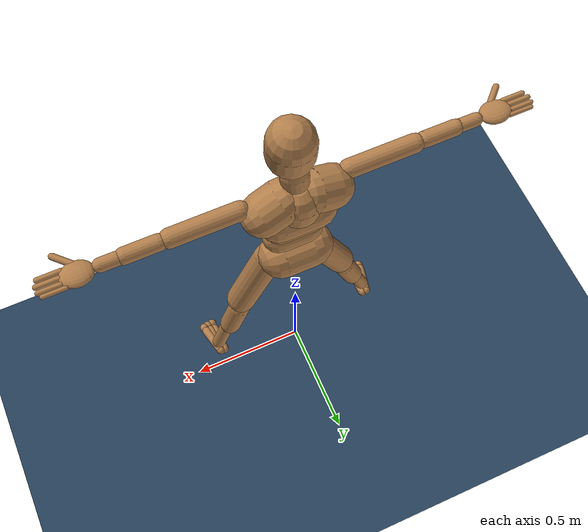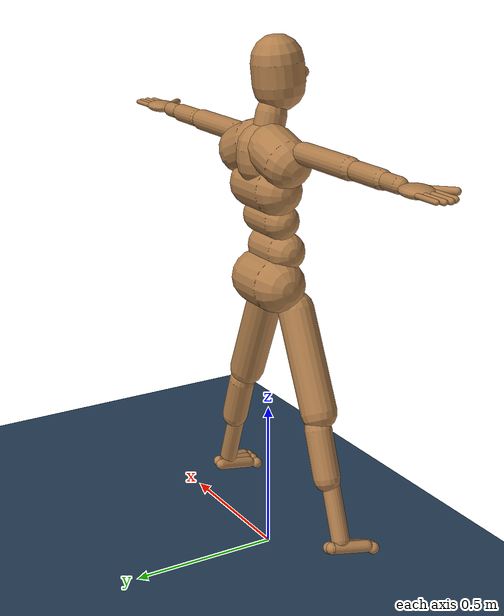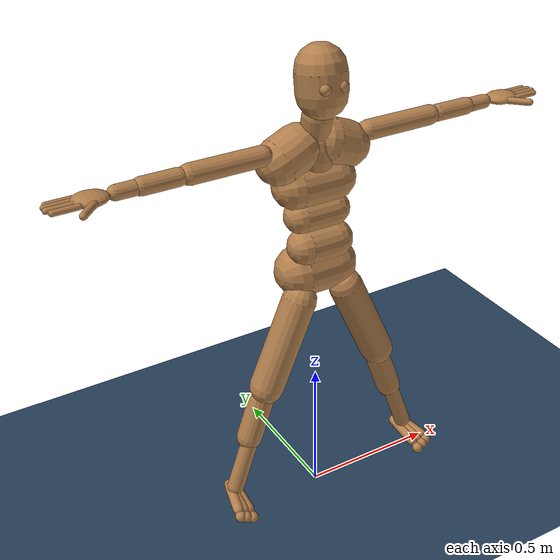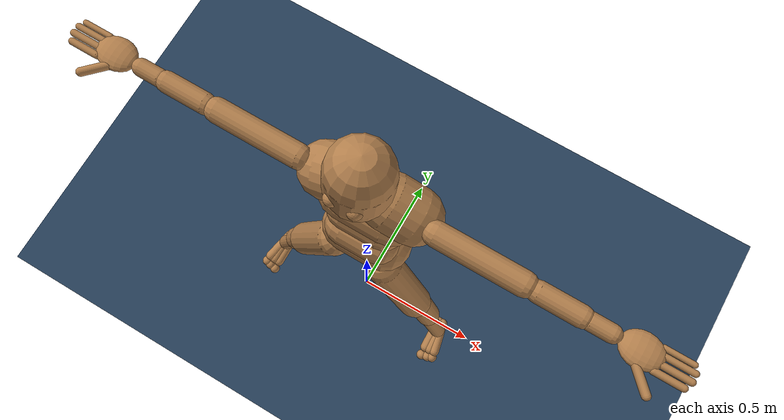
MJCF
<mujoco model="humanoid_CMU">

  <include file="./common/skybox.xml"/>
  <include file="./common/visual.xml"/>
  <include file="./common/materials.xml"/>

  <statistic extent="2" center="0 0 1"/>

  <default class="main">
    <joint limited="true" solimplimit="0 0.99 0.01" stiffness="0.1" armature=".01" damping="1"/>
    <geom friction="0.7" solref="0.015 1" solimp="0.95 0.99 0.003"/>
    <motor ctrllimited="true" ctrlrange="-1 1"/>
    <default class="humanoid">
      <geom type="capsule" material="self"/>
      <default class="stiff_low">
        <joint stiffness=".5" damping="4"/>
      </default>
      <default class="stiff_medium">
        <joint stiffness="10" damping="5"/>
      </default>
      <default class="stiff_high">
        <joint stiffness="30" damping="10"/>
      </default>
      <default class="touch">
        <site group="3" rgba="0 0 1 .5"/>
      </default>
    </default>
  </default>

  <worldbody>
    <geom name="floor" type="plane" conaffinity="1" size="100 100 .2" material="grid"/>
    <light name="tracking_light" pos="0 0 7" dir="0 0 -1" mode="trackcom"/>
    <camera name="back" pos="0 3 2.4" xyaxes="-1 0 0 0 -1 2" mode="trackcom"/>
    <camera name="side" pos="-3 0 2.4" xyaxes="0 -1 0 1 0 2" mode="trackcom"/>
    <body name="root" childclass="humanoid" pos="0 0 1" euler="90 0 0">
      <site name="root" size=".01" rgba="0.5 0.5 0.5 0"/>
      <freejoint name="root"/>
      <geom name="root_geom" size="0.09 0.06" pos="0 -0.05 0" quat="1 0 -1 0"/>
      <body name="lhipjoint">
        <geom name="lhipjoint" size="0.008 0.022" pos="0.051 -0.046 0.025" quat="0.5708 -0.566602 -0.594264 0"/>
        <body name="lfemur" pos="0.102 -0.092 0.05" quat="1 0 0 0.17365">
          <joint name="lfemurrz" axis="0 0 1" range="-60 70" class="stiff_medium"/>
          <joint name="lfemurry" axis="0 1 0" range="-70 70" class="stiff_medium"/>
          <joint name="lfemurrx" axis="1 0 0" range="-160 20" class="stiff_medium"/>
          <geom name="lfemur" size="0.06 0.17" pos="-.01 -0.202473 0" quat="0.7 -0.7 -0.1228 -0.07"/>
          <body name="ltibia" pos="0 -0.404945 0">
            <joint name="ltibiarx" axis="1 0 0" range="1   170" class="stiff_low"/>
            <geom name="ltibia" size="0.03 0.1825614" pos="0 -0.202846 0" quat="0.7 -0.7 -0.1228 -0.1228"/>
            <geom name="lcalf" size="0.045 0.08" pos="0 -0.1 -.01" quat="0.7 -0.7 -0.1228 -0.1228"/>
            <body name="lfoot" pos="0 -0.405693 0" quat="0.707107 -0.707107 0 0">
              <site name="lfoot_touch" type="box" pos="-.005 -.02 -0.025" size=".04 .08 .02" euler="10 0 0" class="touch"/>
              <joint name="lfootrz" axis="0 0 1" range="-70 20" class="stiff_medium"/>
              <joint name="lfootrx" axis="1 0 0" range="-45    90" class="stiff_medium"/>
              <geom name="lfoot0" size="0.02 0.06" pos="-0.02 -0.023 -0.01" euler="100 -2 0"/>
              <geom name="lfoot1" size="0.02 0.06" pos="0 -0.023 -0.01" euler="100 0 0"/>
              <geom name="lfoot2" size="0.02 0.06" pos=".01 -0.023 -0.01" euler="100 10 0"/>
              <body name="ltoes" pos="0 -0.106372 -0.0227756">
                <joint name="ltoesrx" axis="1 0 0" range="-90 20"/>
                <geom name="ltoes0" type="sphere" size="0.02" pos="-.025 -0.01 -.01"/>
                <geom name="ltoes1" type="sphere" size="0.02" pos="0 -0.005 -.01"/>
                <geom name="ltoes2" type="sphere" size="0.02" pos=".02 .001 -.01"/>
                <site name="ltoes_touch" type="capsule" pos="-.005 -.005 -.01" size="0.025 0.02" zaxis="1 .2 0" class="touch"/>
              </body>
            </body>
          </body>
        </body>
      </body>
      <body name="rhipjoint">
        <geom name="rhipjoint" size="0.008 0.022" pos="-0.051 -0.046 0.025" quat="0.574856 -0.547594 0.608014 0"/>
        <body name="rfemur" pos="-0.102 -0.092 0.05" quat="1 0 0 -0.17365">
          <joint name="rfemurrz" axis="0 0 1" range="-70 60" class="stiff_medium"/>
          <joint name="rfemurry" axis="0 1 0" range="-70 70" class="stiff_medium"/>
          <joint name="rfemurrx" axis="1 0 0" range="-160 20" class="stiff_medium"/>
          <geom name="rfemur" size="0.06 0.17" pos=".01 -0.202473 0" quat="0.7 -0.7 0.1228 0.07"/>
          <body name="rtibia" pos="0 -0.404945 0">
            <joint name="rtibiarx" axis="1 0 0" range="1   170" class="stiff_low"/>
            <geom name="rtibia" size="0.03 0.1825614" pos="0 -0.202846 0" quat="0.7 -0.7 0.1228 0.1228"/>
            <geom name="rcalf" size="0.045 0.08" pos="0 -0.1 -.01" quat="0.7 -0.7 -0.1228 -0.1228"/>
            <body name="rfoot" pos="0 -0.405693 0" quat="0.707107 -0.707107 0 0">
              <site name="rfoot_touch" type="box" pos=".005 -.02 -0.025" size=".04 .08 .02" euler="10 0 0" class="touch"/>
              <joint name="rfootrz" axis="0 0 1" range="-20 70" class="stiff_medium"/>
              <joint name="rfootrx" axis="1 0 0" range="-45    90" class="stiff_medium"/>
              <geom name="rfoot0" size="0.02 0.06" pos="0.02 -0.023 -0.01" euler="100 2 0"/>
              <geom name="rfoot1" size="0.02 0.06" pos="0 -0.023 -0.01" euler="100 0 0"/>
              <geom name="rfoot2" size="0.02 0.06" pos="-.01 -0.023 -0.01" euler="100 -10 0"/>
              <body name="rtoes" pos="0 -0.106372 -0.0227756">
                <joint name="rtoesrx" axis="1 0 0" range="-90 20"/>
                <geom name="rtoes0" type="sphere" size="0.02" pos=".025 -0.01 -.01"/>
                <geom name="rtoes1" type="sphere" size="0.02" pos="0 -0.005 -.01"/>
                <geom name="rtoes2" type="sphere" size="0.02" pos="-.02 .001 -.01"/>
                <site name="rtoes_touch" type="capsule" pos=".005 -.005 -.01" size="0.025 0.02" zaxis="1 -.2 0" class="touch"/>
              </body>
            </body>
          </body>
        </body>
      </body>
      <body name="lowerback">
        <joint name="lowerbackrz" axis="0 0 1" range="-30 30" class="stiff_high"/>
        <joint name="lowerbackry" axis="0 1 0" range="-30 30" class="stiff_high"/>
        <joint name="lowerbackrx" axis="1 0 0" range="-20 45" class="stiff_high"/>
        <geom name="lowerback" size="0.065 0.055" pos="0 0.056 .03" quat="1 0 1 0"/>
        <body name="upperback" pos="0 0.1 -0.01">
          <joint name="upperbackrz" axis="0 0 1" range="-30 30" class="stiff_high"/>
          <joint name="upperbackry" axis="0 1 0" range="-30 30" class="stiff_high"/>
          <joint name="upperbackrx" axis="1 0 0" range="-20 45" class="stiff_high"/>
          <geom name="upperback" size="0.06 0.06" pos="0 0.06 0.02" quat="1 0 1 0"/>
          <body name="thorax" pos="0.000512528 0.11356 0.000936821">
            <joint name="thoraxrz" axis="0 0 1" range="-30 30" class="stiff_high"/>
            <joint name="thoraxry" axis="0 1 0" range="-30 30" class="stiff_high"/>
            <joint name="thoraxrx" axis="1 0 0" range="-20 45" class="stiff_high"/>
            <geom name="thorax" size="0.08 0.07" pos="0 0.05 0" quat="1 0 1 0"/>
            <body name="lowerneck" pos="0 0.113945 0.00468037">
              <joint name="lowerneckrz" axis="0 0 1" range="-30 30" class="stiff_medium"/>
              <joint name="lowerneckry" axis="0 1 0" range="-30 30" class="stiff_medium"/>
              <joint name="lowerneckrx" axis="1 0 0" range="-20 45" class="stiff_medium"/>
              <geom name="lowerneck" size="0.08 0.02" pos="0 0.04 -.02" quat="1 1 0 0"/>
              <body name="upperneck" pos="0 0.09 0.01">
                <joint name="upperneckrz" axis="0 0 1" range="-30 30" class="stiff_medium"/>
                <joint name="upperneckry" axis="0 1 0" range="-30 30" class="stiff_medium"/>
                <joint name="upperneckrx" axis="1 0 0" range="-20 45" class="stiff_medium"/>
                <geom name="upperneck" size="0.05 0.03" pos="0 0.05 0" quat=".8 1 0 0"/>
                <body name="head" pos="0 0.09 0">
                  <joint name="headrz" axis="0 0 1" range="-30 30" class="stiff_medium"/>
                  <joint name="headry" axis="0 1 0" range="-30 30" class="stiff_medium"/>
                  <joint name="headrx" axis="1 0 0" range="-20 45" class="stiff_medium"/>
                  <geom name="head" size="0.085 0.035" pos="0 0.11 0.03" quat="1 .9 0 0"/>
                  <geom name="leye" type="sphere" size="0.02" pos=" .03 0.11 0.1"/>
                  <geom name="reye" type="sphere" size="0.02" pos="-.03 0.11 0.1"/>
                </body>
              </body>
            </body>
            <body name="lclavicle" pos="0 0.113945 0.00468037">
              <joint name="lclaviclerz" axis="0 0 1" range="0 20" class="stiff_high"/>
              <joint name="lclaviclery" axis="0 1 0" range="-20 10" class="stiff_high"/>
              <geom name="lclavicle" size="0.08 0.04" pos="0.09 0.05 -.01" quat="1 0 -1 -.4"/>
              <body name="lhumerus" pos="0.183 0.076 0.01" quat="0.18 0.68 -0.68 0.18">
                <joint name="lhumerusrz" axis="0 0 1" range="-90 90" class="stiff_low"/>
                <joint name="lhumerusry" axis="0 1 0" range="-90 90" class="stiff_low"/>
                <joint name="lhumerusrx" axis="1 0 0" range="-60 90" class="stiff_low"/>
                <geom name="lhumerus" size="0.035 0.124" pos="0 -0.138 0" quat="0.612 -0.612 0.35 0.35"/>
                <body name="lradius" pos="0 -0.277 0">
                  <joint name="lradiusrx" axis="1 0 0" range="-10 170" class="stiff_low"/>
                  <geom name="lradius" size="0.03 0.06" pos="0 -0.08 0" quat="0.612 -0.612 0.35 0.35"/>
                  <body name="lwrist" pos="0 -0.17 0" quat="-0.5 0 0.866 0">
                    <joint name="lwristry" axis="0 1 0" range="-180 0"/>
                    <geom name="lwrist" size="0.025 0.03" pos="0 -0.02 0" quat="0 0 -1 -1"/>
                    <body name="lhand" pos="0 -0.08 0">
                      <joint name="lhandrz" axis="0 0 1" range="-45 45"/>
                      <joint name="lhandrx" axis="1 0 0" range="-90 90"/>
                      <geom name="lhand" type="ellipsoid" size=".048 0.02 0.06" pos="0 -0.047 0" quat="0 0 -1 -1"/>
                      <body name="lfingers" pos="0 -0.08 0">
                        <joint name="lfingersrx" axis="1 0 0" range="0 90"/>
                        <geom name="lfinger0" size="0.01 0.04" pos="-.03 -0.05 0" quat="1 -1 0 0" />
                        <geom name="lfinger1" size="0.01 0.04" pos="-.008 -0.06 0" quat="1 -1 0 0" />
                        <geom name="lfinger2" size="0.009 0.04" pos=".014 -0.06 0" quat="1 -1 0 0" />
                        <geom name="lfinger3" size="0.008 0.04" pos=".032 -0.05 0" quat="1 -1 0 0" />
                      </body>
                      <body name="lthumb" pos="-.02 -.03 0" quat="0.92388 0 0 -0.382683">
                        <joint name="lthumbrz" axis="0 0 1" range="-45 45"/>
                        <joint name="lthumbrx" axis="1 0 0" range="0 90"/>
                        <geom name="lthumb" size="0.012 0.04" pos="0 -0.06 0" quat="0 0 -1 -1"/>
                      </body>
                    </body>
                  </body>
                </body>
              </body>
            </body>
            <body name="rclavicle" pos="0 0.113945 0.00468037">
              <joint name="rclaviclerz" axis="0 0 1" range="-20 0" class="stiff_high"/>
              <joint name="rclaviclery" axis="0 1 0" range="-10 20" class="stiff_high"/>
              <geom name="rclavicle" size="0.08 0.04" pos="-.09 0.05 -.01" quat="1 0 -1 .4"/>
              <body name="rhumerus" pos="-0.183 0.076 0.01" quat="0.18 0.68 0.68 -0.18">
                <joint name="rhumerusrz" axis="0 0 1" range="-90 90" class="stiff_low"/>
                <joint name="rhumerusry" axis="0 1 0" range="-90 90" class="stiff_low"/>
                <joint name="rhumerusrx" axis="1 0 0" range="-90 60" class="stiff_low"/>
                <geom name="rhumerus" size="0.035 0.124" pos="0 -0.138 0" quat="0.61 -0.61 -0.35 -0.35"/>
                <body name="rradius" pos="0 -0.277 0">
                  <joint name="rradiusrx" axis="1 0 0" range="-10 170" class="stiff_low"/>
                  <geom name="rradius" size="0.03 0.06" pos="0 -0.08 0" quat="0.612 -0.612 -0.35 -0.35"/>
                  <body name="rwrist" pos="0 -0.17 0" quat="-0.5 0 -0.866 0">
                    <joint name="rwristry" axis="0 1 0" range="-180 0"/>
                    <geom name="rwrist" size="0.025 0.03" pos="0 -0.02 0" quat="0 0 1 1"/>
                    <body name="rhand" pos="0 -0.08 0">
                      <joint name="rhandrz" axis="0 0 1" range="-45 45"/>
                      <joint name="rhandrx" axis="1 0 0" range="-90 90"/>
                      <geom name="rhand" type="ellipsoid" size=".048 0.02 .06" pos="0 -0.047 0" quat="0 0 1 1"/>
                      <body name="rfingers" pos="0 -0.08 0">
                        <joint name="rfingersrx" axis="1 0 0" range="0 90"/>
                        <geom name="rfinger0" size="0.01 0.04" pos=".03 -0.05 0" quat="1 -1  0 0" />
                        <geom name="rfinger1" size="0.01 0.04" pos=".008 -0.06 0" quat="1 -1  0 0" />
                        <geom name="rfinger2" size="0.009 0.04" pos="-.014 -0.06 0" quat="1 -1  0 0" />
                        <geom name="rfinger3" size="0.008 0.04" pos="-.032 -0.05 0" quat="1 -1  0 0" />
                      </body>
                      <body name="rthumb" pos=".02 -.03 0" quat="0.92388 0 0 0.382683">
                        <joint name="rthumbrz" axis="0 0 1" range="-45    45"/>
                        <joint name="rthumbrx" axis="1 0 0" range="0 90"/>
                        <geom name="rthumb" size="0.012 0.04" pos="0 -0.06 0" quat="0 0 1 1"/>
                      </body>
                    </body>
                  </body>
                </body>
              </body>
            </body>
          </body>
        </body>
      </body>
    </body>
  </worldbody>

  <contact>
    <exclude body1="lclavicle" body2="rclavicle"/>
    <exclude body1="lowerneck" body2="lclavicle"/>
    <exclude body1="lowerneck" body2="rclavicle"/>
    <exclude body1="upperneck" body2="lclavicle"/>
    <exclude body1="upperneck" body2="rclavicle"/>
  </contact>

  <actuator>
    <motor name="headrx" joint="headrx" gear="20"/>
    <motor name="headry" joint="headry" gear="20"/>
    <motor name="headrz" joint="headrz" gear="20"/>
    <motor name="lclaviclery" joint="lclaviclery" gear="20"/>
    <motor name="lclaviclerz" joint="lclaviclerz" gear="20"/>
    <motor name="lfemurrx" joint="lfemurrx" gear="120"/>
    <motor name="lfemurry" joint="lfemurry" gear="40"/>
    <motor name="lfemurrz" joint="lfemurrz" gear="40"/>
    <motor name="lfingersrx" joint="lfingersrx" gear="20"/>
    <motor name="lfootrx" joint="lfootrx" gear="20"/>
    <motor name="lfootrz" joint="lfootrz" gear="20"/>
    <motor name="lhandrx" joint="lhandrx" gear="20"/>
    <motor name="lhandrz" joint="lhandrz" gear="20"/>
    <motor name="lhumerusrx" joint="lhumerusrx" gear="40"/>
    <motor name="lhumerusry" joint="lhumerusry" gear="40"/>
    <motor name="lhumerusrz" joint="lhumerusrz" gear="40"/>
    <motor name="lowerbackrx" joint="lowerbackrx" gear="40"/>
    <motor name="lowerbackry" joint="lowerbackry" gear="40"/>
    <motor name="lowerbackrz" joint="lowerbackrz" gear="40"/>
    <motor name="lowerneckrx" joint="lowerneckrx" gear="20"/>
    <motor name="lowerneckry" joint="lowerneckry" gear="20"/>
    <motor name="lowerneckrz" joint="lowerneckrz" gear="20"/>
    <motor name="lradiusrx" joint="lradiusrx" gear="40"/>
    <motor name="lthumbrx" joint="lthumbrx" gear="20"/>
    <motor name="lthumbrz" joint="lthumbrz" gear="20"/>
    <motor name="ltibiarx" joint="ltibiarx" gear="80"/>
    <motor name="ltoesrx" joint="ltoesrx" gear="20"/>
    <motor name="lwristry" joint="lwristry" gear="20"/>
    <motor name="rclaviclery" joint="rclaviclery" gear="20"/>
    <motor name="rclaviclerz" joint="rclaviclerz" gear="20"/>
    <motor name="rfemurrx" joint="rfemurrx" gear="120"/>
    <motor name="rfemurry" joint="rfemurry" gear="40"/>
    <motor name="rfemurrz" joint="rfemurrz" gear="40"/>
    <motor name="rfingersrx" joint="rfingersrx" gear="20"/>
    <motor name="rfootrx" joint="rfootrx" gear="20"/>
    <motor name="rfootrz" joint="rfootrz" gear="20"/>
    <motor name="rhandrx" joint="rhandrx" gear="20"/>
    <motor name="rhandrz" joint="rhandrz" gear="20"/>
    <motor name="rhumerusrx" joint="rhumerusrx" gear="40"/>
    <motor name="rhumerusry" joint="rhumerusry" gear="40"/>
    <motor name="rhumerusrz" joint="rhumerusrz" gear="40"/>
    <motor name="rradiusrx" joint="rradiusrx" gear="40"/>
    <motor name="rthumbrx" joint="rthumbrx" gear="20"/>
    <motor name="rthumbrz" joint="rthumbrz" gear="20"/>
    <motor name="rtibiarx" joint="rtibiarx" gear="80"/>
    <motor name="rtoesrx" joint="rtoesrx" gear="20"/>
    <motor name="rwristry" joint="rwristry" gear="20"/>
    <motor name="thoraxrx" joint="thoraxrx" gear="40"/>
    <motor name="thoraxry" joint="thoraxry" gear="40"/>
    <motor name="thoraxrz" joint="thoraxrz" gear="40"/>
    <motor name="upperbackrx" joint="upperbackrx" gear="40"/>
    <motor name="upperbackry" joint="upperbackry" gear="40"/>
    <motor name="upperbackrz" joint="upperbackrz" gear="40"/>
    <motor name="upperneckrx" joint="upperneckrx" gear="20"/>
    <motor name="upperneckry" joint="upperneckry" gear="20"/>
    <motor name="upperneckrz" joint="upperneckrz" gear="20"/>
  </actuator>

  <sensor>
    <velocimeter name="sensor_root_veloc" site="root"/>
    <gyro name="sensor_root_gyro" site="root"/>
    <accelerometer name="sensor_root_accel" site="root"/>
    <touch name="sensor_touch_ltoes" site="ltoes_touch"/>
    <touch name="sensor_touch_rtoes" site="rtoes_touch"/>
    <touch name="sensor_touch_rfoot" site="rfoot_touch"/>
    <touch name="sensor_touch_lfoot" site="lfoot_touch"/>
  </sensor>

</mujoco>

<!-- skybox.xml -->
<mujoco>
  <asset>
      <texture name="skybox" type="skybox" builtin="gradient" rgb1=".4 .6 .8" rgb2="0 0 0"
               width="800" height="800" mark="random" markrgb="1 1 1"/>
  </asset>
</mujoco>

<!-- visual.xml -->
<mujoco>
  <visual>
    <headlight ambient=".4 .4 .4" diffuse=".8 .8 .8" specular="0.1 0.1 0.1"/>
    <map znear=".01"/>
    <quality shadowsize="2048"/>
  </visual>
</mujoco>

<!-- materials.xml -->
<!--
Common textures, colors and materials to be used throughout this suite. Some
materials such as xxx_highlight are activated on occurence of certain events,
for example receiving a positive reward.
-->
<mujoco>
  <asset>
    <texture name="grid" type="2d" builtin="checker" rgb1=".1 .2 .3" rgb2=".2 .3 .4" width="300" height="300" mark="edge" markrgb=".2 .3 .4"/>
    <material name="grid" texture="grid" texrepeat="1 1" texuniform="true" reflectance=".2"/>
    <material name="self" rgba=".7 .5 .3 1"/>
    <material name="self_default" rgba=".7 .5 .3 1"/>
    <material name="self_highlight" rgba="0 .5 .3 1"/>
    <material name="effector" rgba=".7 .4 .2 1"/>
    <material name="effector_default" rgba=".7 .4 .2 1"/>
    <material name="effector_highlight" rgba="0 .5 .3 1"/>
    <material name="decoration" rgba=".3 .5 .7 1"/>
    <material name="eye" rgba="0 .2 1 1"/>
    <material name="target" rgba=".6 .3 .3 1"/>
    <material name="target_default" rgba=".6 .3 .3 1"/>
    <material name="target_highlight" rgba=".6 .3 .3 .4"/>
  </asset>
</mujoco>
